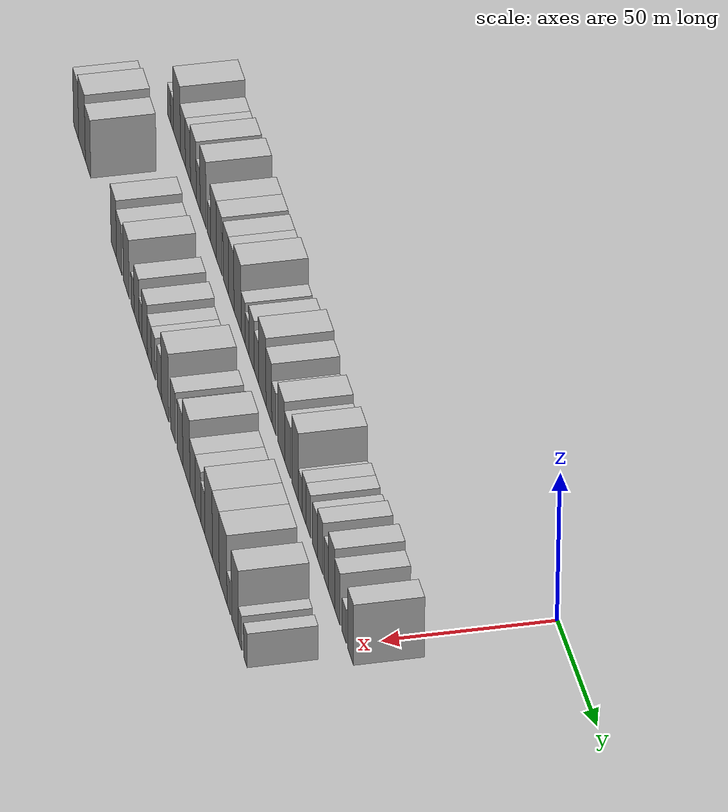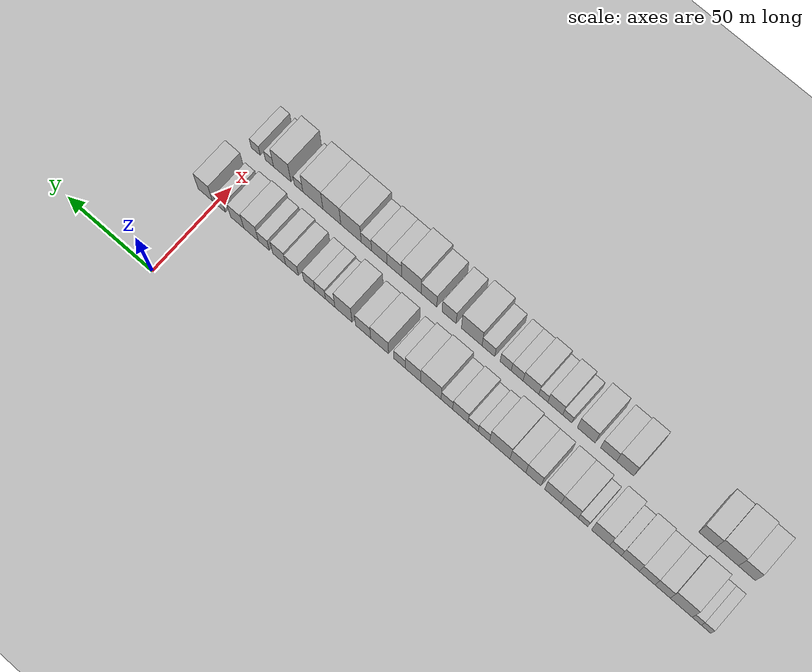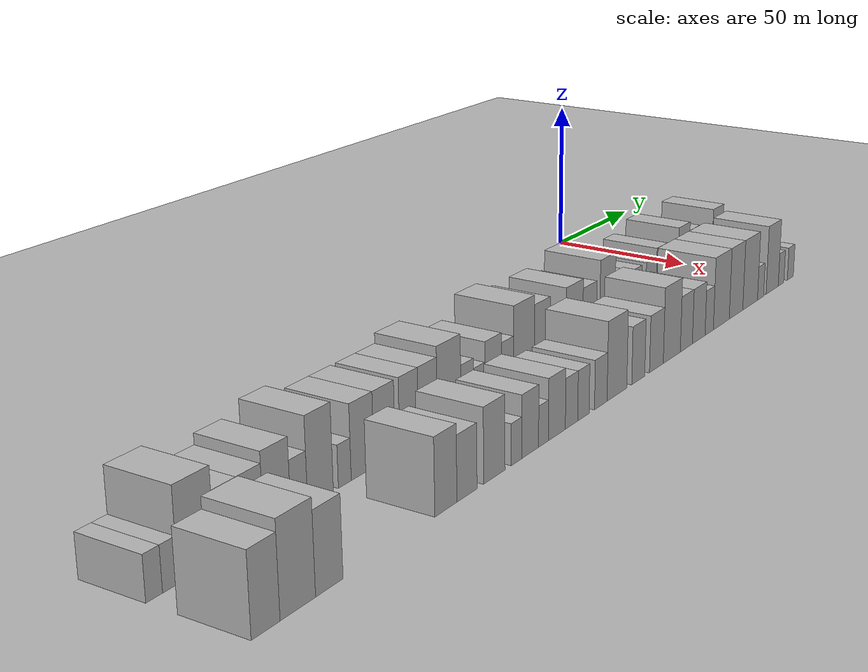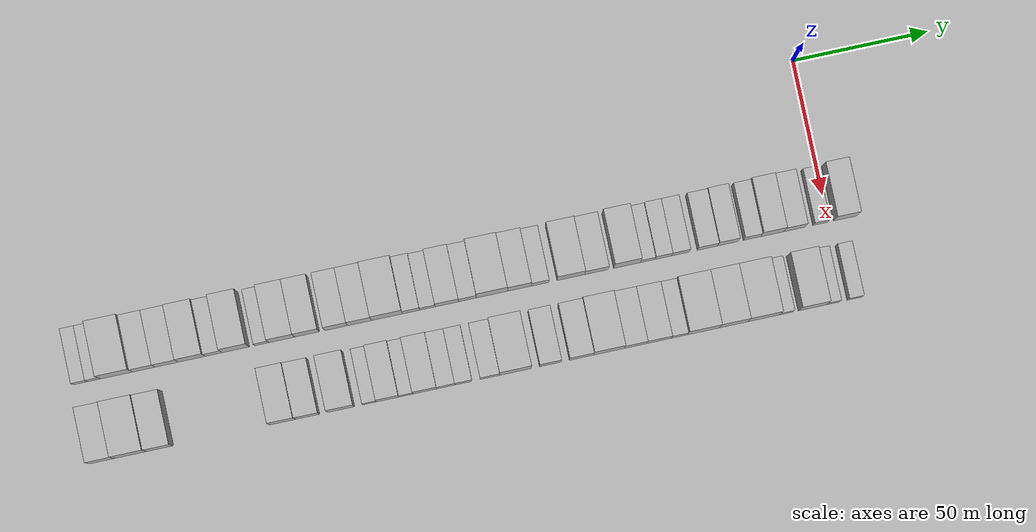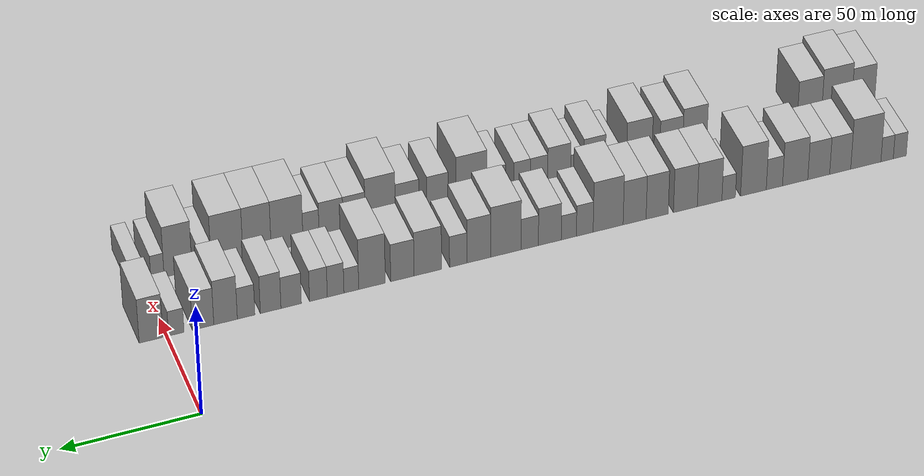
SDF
<sdf version="1.6">
 <world name="default">
  <include><name>ground_plane_1</name><uri>model://HANNAS_ground_plane</uri></include>
  <include>
   <name>ground_plane_2</name>
   <uri>model://HANNAS_ground_plane</uri>
   <pose>100 0 0  0 0 0</pose>
  </include>
  <model name="building_1">
   <static>1</static>
   <pose>50.0000 -275.4501 0 0.000000 0.000000 0.000000</pose>
   <link name="link">
    <pose>0 0 6.00 0 0 0</pose>
    <collision name="collision"><geometry><box><size>20.0000 5.0997 12.0000</size></box></geometry></collision>
    <visual name="visual">
     <cast_shadows>0</cast_shadows>
     <geometry><box><size>20.0000 5.0997 12.0000</size></box></geometry>
     <material>
      <script>
       <uri>model://HANNAS_wall/materials/scripts</uri>
       <uri>model://HANNAS_wall/materials/textures</uri>
       <name>vrc/HANNAS_wall</name>
      </script>
     </material>
    </visual>
   </link>
  </model>
  <model name="building_2">
   <static>1</static>
   <pose>50.0000 -270.4761 0 0.000000 0.000000 0.000000</pose>
   <link name="link">
    <pose>0 0 6.00 0 0 0</pose>
    <collision name="collision"><geometry><box><size>20.0000 4.8484 12.0000</size></box></geometry></collision>
    <visual name="visual">
     <cast_shadows>0</cast_shadows>
     <geometry><box><size>20.0000 4.8484 12.0000</size></box></geometry>
     <material>
      <script>
       <uri>model://HANNAS_wall/materials/scripts</uri>
       <uri>model://HANNAS_wall/materials/textures</uri>
       <name>vrc/HANNAS_wall</name>
      </script>
     </material>
    </visual>
   </link>
  </model>
  <model name="building_3">
   <static>1</static>
   <pose>50.0000 -262.1490 0 0.000000 0.000000 0.000000</pose>
   <link name="link">
    <pose>0 0 12.00 0 0 0</pose>
    <collision name="collision"><geometry><box><size>20.0000 11.8057 24.0000</size></box></geometry></collision>
    <visual name="visual">
     <cast_shadows>0</cast_shadows>
     <geometry><box><size>20.0000 11.8057 24.0000</size></box></geometry>
     <material>
      <script>
       <uri>model://HANNAS_wall/materials/scripts</uri>
       <uri>model://HANNAS_wall/materials/textures</uri>
       <name>vrc/HANNAS_wall</name>
      </script>
     </material>
    </visual>
   </link>
  </model>
  <model name="building_4">
   <static>1</static>
   <pose>50.0000 -252.1356 0 0.000000 0.000000 0.000000</pose>
   <link name="link">
    <pose>0 0 9.00 0 0 0</pose>
    <collision name="collision"><geometry><box><size>20.0000 8.2212 18.0000</size></box></geometry></collision>
    <visual name="visual">
     <cast_shadows>0</cast_shadows>
     <geometry><box><size>20.0000 8.2212 18.0000</size></box></geometry>
     <material>
      <script>
       <uri>model://HANNAS_wall/materials/scripts</uri>
       <uri>model://HANNAS_wall/materials/textures</uri>
       <name>vrc/HANNAS_wall</name>
      </script>
     </material>
    </visual>
   </link>
  </model>
  <model name="building_5">
   <static>1</static>
   <pose>50.0000 -243.7747 0 0.000000 0.000000 0.000000</pose>
   <link name="link">
    <pose>0 0 9.00 0 0 0</pose>
    <collision name="collision"><geometry><box><size>20.0000 8.5006 18.0000</size></box></geometry></collision>
    <visual name="visual">
     <cast_shadows>0</cast_shadows>
     <geometry><box><size>20.0000 8.5006 18.0000</size></box></geometry>
     <material>
      <script>
       <uri>model://HANNAS_wall/materials/scripts</uri>
       <uri>model://HANNAS_wall/materials/textures</uri>
       <name>vrc/HANNAS_wall</name>
      </script>
     </material>
    </visual>
   </link>
  </model>
  <model name="building_6">
   <static>1</static>
   <pose>50.0000 -234.6175 0 0.000000 0.000000 0.000000</pose>
   <link name="link">
    <pose>0 0 10.50 0 0 0</pose>
    <collision name="collision"><geometry><box><size>20.0000 9.8136 21.0000</size></box></geometry></collision>
    <visual name="visual">
     <cast_shadows>0</cast_shadows>
     <geometry><box><size>20.0000 9.8136 21.0000</size></box></geometry>
     <material>
      <script>
       <uri>model://HANNAS_wall/materials/scripts</uri>
       <uri>model://HANNAS_wall/materials/textures</uri>
       <name>vrc/HANNAS_wall</name>
      </script>
     </material>
    </visual>
   </link>
  </model>
  <model name="building_7">
   <static>1</static>
   <pose>50.0000 -226.5610 0 0.000000 0.000000 0.000000</pose>
   <link name="link">
    <pose>0 0 7.50 0 0 0</pose>
    <collision name="collision"><geometry><box><size>20.0000 6.2995 15.0000</size></box></geometry></collision>
    <visual name="visual">
     <cast_shadows>0</cast_shadows>
     <geometry><box><size>20.0000 6.2995 15.0000</size></box></geometry>
     <material>
      <script>
       <uri>model://HANNAS_wall/materials/scripts</uri>
       <uri>model://HANNAS_wall/materials/textures</uri>
       <name>vrc/HANNAS_wall</name>
      </script>
     </material>
    </visual>
   </link>
  </model>
  <model name="building_8">
   <static>1</static>
   <pose>50.0000 -218.4546 0 0.000000 0.000000 0.000000</pose>
   <link name="link">
    <pose>0 0 12.00 0 0 0</pose>
    <collision name="collision"><geometry><box><size>20.0000 9.9131 24.0000</size></box></geometry></collision>
    <visual name="visual">
     <cast_shadows>0</cast_shadows>
     <geometry><box><size>20.0000 9.9131 24.0000</size></box></geometry>
     <material>
      <script>
       <uri>model://HANNAS_wall/materials/scripts</uri>
       <uri>model://HANNAS_wall/materials/textures</uri>
       <name>vrc/HANNAS_wall</name>
      </script>
     </material>
    </visual>
   </link>
  </model>
  <model name="building_9">
   <static>1</static>
   <pose>50.0000 -208.9025 0 0.000000 0.000000 0.000000</pose>
   <link name="link">
    <pose>0 0 6.00 0 0 0</pose>
    <collision name="collision"><geometry><box><size>20.0000 5.1912 12.0000</size></box></geometry></collision>
    <visual name="visual">
     <cast_shadows>0</cast_shadows>
     <geometry><box><size>20.0000 5.1912 12.0000</size></box></geometry>
     <material>
      <script>
       <uri>model://HANNAS_wall/materials/scripts</uri>
       <uri>model://HANNAS_wall/materials/textures</uri>
       <name>vrc/HANNAS_wall</name>
      </script>
     </material>
    </visual>
   </link>
  </model>
  <model name="building_10">
   <static>1</static>
   <pose>50.0000 -201.5796 0 0.000000 0.000000 0.000000</pose>
   <link name="link">
    <pose>0 0 10.50 0 0 0</pose>
    <collision name="collision"><geometry><box><size>20.0000 9.4546 21.0000</size></box></geometry></collision>
    <visual name="visual">
     <cast_shadows>0</cast_shadows>
     <geometry><box><size>20.0000 9.4546 21.0000</size></box></geometry>
     <material>
      <script>
       <uri>model://HANNAS_wall/materials/scripts</uri>
       <uri>model://HANNAS_wall/materials/textures</uri>
       <name>vrc/HANNAS_wall</name>
      </script>
     </material>
    </visual>
   </link>
  </model>
  <model name="building_11">
   <static>1</static>
   <pose>50.0000 -192.2869 0 0.000000 0.000000 0.000000</pose>
   <link name="link">
    <pose>0 0 10.50 0 0 0</pose>
    <collision name="collision"><geometry><box><size>20.0000 9.1308 21.0000</size></box></geometry></collision>
    <visual name="visual">
     <cast_shadows>0</cast_shadows>
     <geometry><box><size>20.0000 9.1308 21.0000</size></box></geometry>
     <material>
      <script>
       <uri>model://HANNAS_wall/materials/scripts</uri>
       <uri>model://HANNAS_wall/materials/textures</uri>
       <name>vrc/HANNAS_wall</name>
      </script>
     </material>
    </visual>
   </link>
  </model>
  <model name="building_12">
   <static>1</static>
   <pose>50.0000 -181.5034 0 0.000000 0.000000 0.000000</pose>
   <link name="link">
    <pose>0 0 10.50 0 0 0</pose>
    <collision name="collision"><geometry><box><size>20.0000 8.4361 21.0000</size></box></geometry></collision>
    <visual name="visual">
     <cast_shadows>0</cast_shadows>
     <geometry><box><size>20.0000 8.4361 21.0000</size></box></geometry>
     <material>
      <script>
       <uri>model://HANNAS_wall/materials/scripts</uri>
       <uri>model://HANNAS_wall/materials/textures</uri>
       <name>vrc/HANNAS_wall</name>
      </script>
     </material>
    </visual>
   </link>
  </model>
  <model name="building_13">
   <static>1</static>
   <pose>50.0000 -172.9142 0 0.000000 0.000000 0.000000</pose>
   <link name="link">
    <pose>0 0 10.50 0 0 0</pose>
    <collision name="collision"><geometry><box><size>20.0000 8.7424 21.0000</size></box></geometry></collision>
    <visual name="visual">
     <cast_shadows>0</cast_shadows>
     <geometry><box><size>20.0000 8.7424 21.0000</size></box></geometry>
     <material>
      <script>
       <uri>model://HANNAS_wall/materials/scripts</uri>
       <uri>model://HANNAS_wall/materials/textures</uri>
       <name>vrc/HANNAS_wall</name>
      </script>
     </material>
    </visual>
   </link>
  </model>
  <model name="building_14">
   <static>1</static>
   <pose>50.0000 -162.8512 0 0.000000 0.000000 0.000000</pose>
   <link name="link">
    <pose>0 0 12.00 0 0 0</pose>
    <collision name="collision"><geometry><box><size>20.0000 11.3835 24.0000</size></box></geometry></collision>
    <visual name="visual">
     <cast_shadows>0</cast_shadows>
     <geometry><box><size>20.0000 11.3835 24.0000</size></box></geometry>
     <material>
      <script>
       <uri>model://HANNAS_wall/materials/scripts</uri>
       <uri>model://HANNAS_wall/materials/textures</uri>
       <name>vrc/HANNAS_wall</name>
      </script>
     </material>
    </visual>
   </link>
  </model>
  <model name="building_15">
   <static>1</static>
   <pose>50.0000 -153.9894 0 0.000000 0.000000 0.000000</pose>
   <link name="link">
    <pose>0 0 7.50 0 0 0</pose>
    <collision name="collision"><geometry><box><size>20.0000 6.3402 15.0000</size></box></geometry></collision>
    <visual name="visual">
     <cast_shadows>0</cast_shadows>
     <geometry><box><size>20.0000 6.3402 15.0000</size></box></geometry>
     <material>
      <script>
       <uri>model://HANNAS_wall/materials/scripts</uri>
       <uri>model://HANNAS_wall/materials/textures</uri>
       <name>vrc/HANNAS_wall</name>
      </script>
     </material>
    </visual>
   </link>
  </model>
  <model name="building_16">
   <static>1</static>
   <pose>50.0000 -147.9651 0 0.000000 0.000000 0.000000</pose>
   <link name="link">
    <pose>0 0 6.00 0 0 0</pose>
    <collision name="collision"><geometry><box><size>20.0000 5.7084 12.0000</size></box></geometry></collision>
    <visual name="visual">
     <cast_shadows>0</cast_shadows>
     <geometry><box><size>20.0000 5.7084 12.0000</size></box></geometry>
     <material>
      <script>
       <uri>model://HANNAS_wall/materials/scripts</uri>
       <uri>model://HANNAS_wall/materials/textures</uri>
       <name>vrc/HANNAS_wall</name>
      </script>
     </material>
    </visual>
   </link>
  </model>
  <model name="building_17">
   <static>1</static>
   <pose>50.0000 -140.8006 0 0.000000 0.000000 0.000000</pose>
   <link name="link">
    <pose>0 0 9.00 0 0 0</pose>
    <collision name="collision"><geometry><box><size>20.0000 8.6206 18.0000</size></box></geometry></collision>
    <visual name="visual">
     <cast_shadows>0</cast_shadows>
     <geometry><box><size>20.0000 8.6206 18.0000</size></box></geometry>
     <material>
      <script>
       <uri>model://HANNAS_wall/materials/scripts</uri>
       <uri>model://HANNAS_wall/materials/textures</uri>
       <name>vrc/HANNAS_wall</name>
      </script>
     </material>
    </visual>
   </link>
  </model>
  <model name="building_18">
   <static>1</static>
   <pose>50.0000 -133.2432 0 0.000000 0.000000 0.000000</pose>
   <link name="link">
    <pose>0 0 7.50 0 0 0</pose>
    <collision name="collision"><geometry><box><size>20.0000 6.4942 15.0000</size></box></geometry></collision>
    <visual name="visual">
     <cast_shadows>0</cast_shadows>
     <geometry><box><size>20.0000 6.4942 15.0000</size></box></geometry>
     <material>
      <script>
       <uri>model://HANNAS_wall/materials/scripts</uri>
       <uri>model://HANNAS_wall/materials/textures</uri>
       <name>vrc/HANNAS_wall</name>
      </script>
     </material>
    </visual>
   </link>
  </model>
  <model name="building_19">
   <static>1</static>
   <pose>50.0000 -124.2672 0 0.000000 0.000000 0.000000</pose>
   <link name="link">
    <pose>0 0 12.00 0 0 0</pose>
    <collision name="collision"><geometry><box><size>20.0000 11.4578 24.0000</size></box></geometry></collision>
    <visual name="visual">
     <cast_shadows>0</cast_shadows>
     <geometry><box><size>20.0000 11.4578 24.0000</size></box></geometry>
     <material>
      <script>
       <uri>model://HANNAS_wall/materials/scripts</uri>
       <uri>model://HANNAS_wall/materials/textures</uri>
       <name>vrc/HANNAS_wall</name>
      </script>
     </material>
    </visual>
   </link>
  </model>
  <model name="building_20">
   <static>1</static>
   <pose>50.0000 -114.1282 0 0.000000 0.000000 0.000000</pose>
   <link name="link">
    <pose>0 0 10.50 0 0 0</pose>
    <collision name="collision"><geometry><box><size>20.0000 8.8202 21.0000</size></box></geometry></collision>
    <visual name="visual">
     <cast_shadows>0</cast_shadows>
     <geometry><box><size>20.0000 8.8202 21.0000</size></box></geometry>
     <material>
      <script>
       <uri>model://HANNAS_wall/materials/scripts</uri>
       <uri>model://HANNAS_wall/materials/textures</uri>
       <name>vrc/HANNAS_wall</name>
      </script>
     </material>
    </visual>
   </link>
  </model>
  <model name="building_21">
   <static>1</static>
   <pose>50.0000 -106.4901 0 0.000000 0.000000 0.000000</pose>
   <link name="link">
    <pose>0 0 7.50 0 0 0</pose>
    <collision name="collision"><geometry><box><size>20.0000 6.4560 15.0000</size></box></geometry></collision>
    <visual name="visual">
     <cast_shadows>0</cast_shadows>
     <geometry><box><size>20.0000 6.4560 15.0000</size></box></geometry>
     <material>
      <script>
       <uri>model://HANNAS_wall/materials/scripts</uri>
       <uri>model://HANNAS_wall/materials/textures</uri>
       <name>vrc/HANNAS_wall</name>
      </script>
     </material>
    </visual>
   </link>
  </model>
  <model name="building_22">
   <static>1</static>
   <pose>50.0000 -95.1648 0 0.000000 0.000000 0.000000</pose>
   <link name="link">
    <pose>0 0 10.50 0 0 0</pose>
    <collision name="collision"><geometry><box><size>20.0000 10.1945 21.0000</size></box></geometry></collision>
    <visual name="visual">
     <cast_shadows>0</cast_shadows>
     <geometry><box><size>20.0000 10.1945 21.0000</size></box></geometry>
     <material>
      <script>
       <uri>model://HANNAS_wall/materials/scripts</uri>
       <uri>model://HANNAS_wall/materials/textures</uri>
       <name>vrc/HANNAS_wall</name>
      </script>
     </material>
    </visual>
   </link>
  </model>
  <model name="building_23">
   <static>1</static>
   <pose>50.0000 -85.7402 0 0.000000 0.000000 0.000000</pose>
   <link name="link">
    <pose>0 0 9.00 0 0 0</pose>
    <collision name="collision"><geometry><box><size>20.0000 8.6548 18.0000</size></box></geometry></collision>
    <visual name="visual">
     <cast_shadows>0</cast_shadows>
     <geometry><box><size>20.0000 8.6548 18.0000</size></box></geometry>
     <material>
      <script>
       <uri>model://HANNAS_wall/materials/scripts</uri>
       <uri>model://HANNAS_wall/materials/textures</uri>
       <name>vrc/HANNAS_wall</name>
      </script>
     </material>
    </visual>
   </link>
  </model>
  <model name="building_24">
   <static>1</static>
   <pose>50.0000 -74.5059 0 0.000000 0.000000 0.000000</pose>
   <link name="link">
    <pose>0 0 12.00 0 0 0</pose>
    <collision name="collision"><geometry><box><size>20.0000 9.8138 24.0000</size></box></geometry></collision>
    <visual name="visual">
     <cast_shadows>0</cast_shadows>
     <geometry><box><size>20.0000 9.8138 24.0000</size></box></geometry>
     <material>
      <script>
       <uri>model://HANNAS_wall/materials/scripts</uri>
       <uri>model://HANNAS_wall/materials/textures</uri>
       <name>vrc/HANNAS_wall</name>
      </script>
     </material>
    </visual>
   </link>
  </model>
  <model name="building_25">
   <static>1</static>
   <pose>50.0000 -66.8826 0 0.000000 0.000000 0.000000</pose>
   <link name="link">
    <pose>0 0 6.00 0 0 0</pose>
    <collision name="collision"><geometry><box><size>20.0000 5.4328 12.0000</size></box></geometry></collision>
    <visual name="visual">
     <cast_shadows>0</cast_shadows>
     <geometry><box><size>20.0000 5.4328 12.0000</size></box></geometry>
     <material>
      <script>
       <uri>model://HANNAS_wall/materials/scripts</uri>
       <uri>model://HANNAS_wall/materials/textures</uri>
       <name>vrc/HANNAS_wall</name>
      </script>
     </material>
    </visual>
   </link>
  </model>
  <model name="building_26">
   <static>1</static>
   <pose>50.0000 -61.1020 0 0.000000 0.000000 0.000000</pose>
   <link name="link">
    <pose>0 0 7.50 0 0 0</pose>
    <collision name="collision"><geometry><box><size>20.0000 6.1285 15.0000</size></box></geometry></collision>
    <visual name="visual">
     <cast_shadows>0</cast_shadows>
     <geometry><box><size>20.0000 6.1285 15.0000</size></box></geometry>
     <material>
      <script>
       <uri>model://HANNAS_wall/materials/scripts</uri>
       <uri>model://HANNAS_wall/materials/textures</uri>
       <name>vrc/HANNAS_wall</name>
      </script>
     </material>
    </visual>
   </link>
  </model>
  <model name="building_27">
   <static>1</static>
   <pose>50.0000 -54.7877 0 0.000000 0.000000 0.000000</pose>
   <link name="link">
    <pose>0 0 7.50 0 0 0</pose>
    <collision name="collision"><geometry><box><size>20.0000 6.5000 15.0000</size></box></geometry></collision>
    <visual name="visual">
     <cast_shadows>0</cast_shadows>
     <geometry><box><size>20.0000 6.5000 15.0000</size></box></geometry>
     <material>
      <script>
       <uri>model://HANNAS_wall/materials/scripts</uri>
       <uri>model://HANNAS_wall/materials/textures</uri>
       <name>vrc/HANNAS_wall</name>
      </script>
     </material>
    </visual>
   </link>
  </model>
  <model name="building_28">
   <static>1</static>
   <pose>50.0000 -44.8088 0 0.000000 0.000000 0.000000</pose>
   <link name="link">
    <pose>0 0 7.50 0 0 0</pose>
    <collision name="collision"><geometry><box><size>20.0000 7.4579 15.0000</size></box></geometry></collision>
    <visual name="visual">
     <cast_shadows>0</cast_shadows>
     <geometry><box><size>20.0000 7.4579 15.0000</size></box></geometry>
     <material>
      <script>
       <uri>model://HANNAS_wall/materials/scripts</uri>
       <uri>model://HANNAS_wall/materials/textures</uri>
       <name>vrc/HANNAS_wall</name>
      </script>
     </material>
    </visual>
   </link>
  </model>
  <model name="building_29">
   <static>1</static>
   <pose>50.0000 -37.3295 0 0.000000 0.000000 0.000000</pose>
   <link name="link">
    <pose>0 0 9.00 0 0 0</pose>
    <collision name="collision"><geometry><box><size>20.0000 7.5007 18.0000</size></box></geometry></collision>
    <visual name="visual">
     <cast_shadows>0</cast_shadows>
     <geometry><box><size>20.0000 7.5007 18.0000</size></box></geometry>
     <material>
      <script>
       <uri>model://HANNAS_wall/materials/scripts</uri>
       <uri>model://HANNAS_wall/materials/textures</uri>
       <name>vrc/HANNAS_wall</name>
      </script>
     </material>
    </visual>
   </link>
  </model>
  <model name="building_30">
   <static>1</static>
   <pose>50.0000 -28.3848 0 0.000000 0.000000 0.000000</pose>
   <link name="link">
    <pose>0 0 7.50 0 0 0</pose>
    <collision name="collision"><geometry><box><size>20.0000 6.3886 15.0000</size></box></geometry></collision>
    <visual name="visual">
     <cast_shadows>0</cast_shadows>
     <geometry><box><size>20.0000 6.3886 15.0000</size></box></geometry>
     <material>
      <script>
       <uri>model://HANNAS_wall/materials/scripts</uri>
       <uri>model://HANNAS_wall/materials/textures</uri>
       <name>vrc/HANNAS_wall</name>
      </script>
     </material>
    </visual>
   </link>
  </model>
  <model name="building_31">
   <static>1</static>
   <pose>50.0000 -20.9215 0 0.000000 0.000000 0.000000</pose>
   <link name="link">
    <pose>0 0 10.50 0 0 0</pose>
    <collision name="collision"><geometry><box><size>20.0000 8.5380 21.0000</size></box></geometry></collision>
    <visual name="visual">
     <cast_shadows>0</cast_shadows>
     <geometry><box><size>20.0000 8.5380 21.0000</size></box></geometry>
     <material>
      <script>
       <uri>model://HANNAS_wall/materials/scripts</uri>
       <uri>model://HANNAS_wall/materials/textures</uri>
       <name>vrc/HANNAS_wall</name>
      </script>
     </material>
    </visual>
   </link>
  </model>
  <model name="building_32">
   <static>1</static>
   <pose>50.0000 -12.7740 0 0.000000 0.000000 0.000000</pose>
   <link name="link">
    <pose>0 0 9.00 0 0 0</pose>
    <collision name="collision"><geometry><box><size>20.0000 7.7571 18.0000</size></box></geometry></collision>
    <visual name="visual">
     <cast_shadows>0</cast_shadows>
     <geometry><box><size>20.0000 7.7571 18.0000</size></box></geometry>
     <material>
      <script>
       <uri>model://HANNAS_wall/materials/scripts</uri>
       <uri>model://HANNAS_wall/materials/textures</uri>
       <name>vrc/HANNAS_wall</name>
      </script>
     </material>
    </visual>
   </link>
  </model>
  <model name="building_33">
   <static>1</static>
   <pose>50.0000 -3.0939 0 0.000000 0.000000 0.000000</pose>
   <link name="link">
    <pose>0 0 6.00 0 0 0</pose>
    <collision name="collision"><geometry><box><size>20.0000 5.6031 12.0000</size></box></geometry></collision>
    <visual name="visual">
     <cast_shadows>0</cast_shadows>
     <geometry><box><size>20.0000 5.6031 12.0000</size></box></geometry>
     <material>
      <script>
       <uri>model://HANNAS_wall/materials/scripts</uri>
       <uri>model://HANNAS_wall/materials/textures</uri>
       <name>vrc/HANNAS_wall</name>
      </script>
     </material>
    </visual>
   </link>
  </model>
  <model name="building_34">
   <static>1</static>
   <pose>50.0000 5.9939 0 0.000000 0.000000 0.000000</pose>
   <link name="link">
    <pose>0 0 10.50 0 0 0</pose>
    <collision name="collision"><geometry><box><size>20.0000 8.5725 21.0000</size></box></geometry></collision>
    <visual name="visual">
     <cast_shadows>0</cast_shadows>
     <geometry><box><size>20.0000 8.5725 21.0000</size></box></geometry>
     <material>
      <script>
       <uri>model://HANNAS_wall/materials/scripts</uri>
       <uri>model://HANNAS_wall/materials/textures</uri>
       <name>vrc/HANNAS_wall</name>
      </script>
     </material>
    </visual>
   </link>
  </model>
  <model name="building_65">
   <static>1</static>
   <pose>79.0000 -273.4248 0 0.000000 0.000000 0.000000</pose>
   <link name="link">
    <pose>0 0 10.50 0 0 0</pose>
    <collision name="collision"><geometry><box><size>20.0000 9.1504 21.0000</size></box></geometry></collision>
    <visual name="visual">
     <cast_shadows>0</cast_shadows>
     <geometry><box><size>20.0000 9.1504 21.0000</size></box></geometry>
     <material>
      <script>
       <uri>model://HANNAS_wall/materials/scripts</uri>
       <uri>model://HANNAS_wall/materials/textures</uri>
       <name>vrc/HANNAS_wall</name>
      </script>
     </material>
    </visual>
   </link>
  </model>
  <model name="building_66">
   <static>1</static>
   <pose>79.0000 -262.9587 0 0.000000 0.000000 0.000000</pose>
   <link name="link">
    <pose>0 0 12.00 0 0 0</pose>
    <collision name="collision"><geometry><box><size>20.0000 11.7820 24.0000</size></box></geometry></collision>
    <visual name="visual">
     <cast_shadows>0</cast_shadows>
     <geometry><box><size>20.0000 11.7820 24.0000</size></box></geometry>
     <material>
      <script>
       <uri>model://HANNAS_wall/materials/scripts</uri>
       <uri>model://HANNAS_wall/materials/textures</uri>
       <name>vrc/HANNAS_wall</name>
      </script>
     </material>
    </visual>
   </link>
  </model>
  <model name="building_67">
   <static>1</static>
   <pose>79.0000 -252.2807 0 0.000000 0.000000 0.000000</pose>
   <link name="link">
    <pose>0 0 10.50 0 0 0</pose>
    <collision name="collision"><geometry><box><size>20.0000 9.5739 21.0000</size></box></geometry></collision>
    <visual name="visual">
     <cast_shadows>0</cast_shadows>
     <geometry><box><size>20.0000 9.5739 21.0000</size></box></geometry>
     <material>
      <script>
       <uri>model://HANNAS_wall/materials/scripts</uri>
       <uri>model://HANNAS_wall/materials/textures</uri>
       <name>vrc/HANNAS_wall</name>
      </script>
     </material>
    </visual>
   </link>
  </model>
  <model name="building_68">
   <static>1</static>
   <pose>79.0000 -207.3890 0 0.000000 0.000000 0.000000</pose>
   <link name="link">
    <pose>0 0 10.50 0 0 0</pose>
    <collision name="collision"><geometry><box><size>20.0000 9.4032 21.0000</size></box></geometry></collision>
    <visual name="visual">
     <cast_shadows>0</cast_shadows>
     <geometry><box><size>20.0000 9.4032 21.0000</size></box></geometry>
     <material>
      <script>
       <uri>model://HANNAS_wall/materials/scripts</uri>
       <uri>model://HANNAS_wall/materials/textures</uri>
       <name>vrc/HANNAS_wall</name>
      </script>
     </material>
    </visual>
   </link>
  </model>
  <model name="building_69">
   <static>1</static>
   <pose>79.0000 -198.2684 0 0.000000 0.000000 0.000000</pose>
   <link name="link">
    <pose>0 0 9.00 0 0 0</pose>
    <collision name="collision"><geometry><box><size>20.0000 8.8380 18.0000</size></box></geometry></collision>
    <visual name="visual">
     <cast_shadows>0</cast_shadows>
     <geometry><box><size>20.0000 8.8380 18.0000</size></box></geometry>
     <material>
      <script>
       <uri>model://HANNAS_wall/materials/scripts</uri>
       <uri>model://HANNAS_wall/materials/textures</uri>
       <name>vrc/HANNAS_wall</name>
      </script>
     </material>
    </visual>
   </link>
  </model>
  <model name="building_70">
   <static>1</static>
   <pose>79.0000 -185.9154 0 0.000000 0.000000 0.000000</pose>
   <link name="link">
    <pose>0 0 10.50 0 0 0</pose>
    <collision name="collision"><geometry><box><size>20.0000 9.8680 21.0000</size></box></geometry></collision>
    <visual name="visual">
     <cast_shadows>0</cast_shadows>
     <geometry><box><size>20.0000 9.8680 21.0000</size></box></geometry>
     <material>
      <script>
       <uri>model://HANNAS_wall/materials/scripts</uri>
       <uri>model://HANNAS_wall/materials/textures</uri>
       <name>vrc/HANNAS_wall</name>
      </script>
     </material>
    </visual>
   </link>
  </model>
  <model name="building_71">
   <static>1</static>
   <pose>79.0000 -175.4181 0 0.000000 0.000000 0.000000</pose>
   <link name="link">
    <pose>0 0 6.00 0 0 0</pose>
    <collision name="collision"><geometry><box><size>20.0000 5.1268 12.0000</size></box></geometry></collision>
    <visual name="visual">
     <cast_shadows>0</cast_shadows>
     <geometry><box><size>20.0000 5.1268 12.0000</size></box></geometry>
     <material>
      <script>
       <uri>model://HANNAS_wall/materials/scripts</uri>
       <uri>model://HANNAS_wall/materials/textures</uri>
       <name>vrc/HANNAS_wall</name>
      </script>
     </material>
    </visual>
   </link>
  </model>
  <model name="building_72">
   <static>1</static>
   <pose>79.0000 -168.7110 0 0.000000 0.000000 0.000000</pose>
   <link name="link">
    <pose>0 0 9.00 0 0 0</pose>
    <collision name="collision"><geometry><box><size>20.0000 8.2872 18.0000</size></box></geometry></collision>
    <visual name="visual">
     <cast_shadows>0</cast_shadows>
     <geometry><box><size>20.0000 8.2872 18.0000</size></box></geometry>
     <material>
      <script>
       <uri>model://HANNAS_wall/materials/scripts</uri>
       <uri>model://HANNAS_wall/materials/textures</uri>
       <name>vrc/HANNAS_wall</name>
      </script>
     </material>
    </visual>
   </link>
  </model>
  <model name="building_73">
   <static>1</static>
   <pose>79.0000 -162.0467 0 0.000000 0.000000 0.000000</pose>
   <link name="link">
    <pose>0 0 6.00 0 0 0</pose>
    <collision name="collision"><geometry><box><size>20.0000 5.0414 12.0000</size></box></geometry></collision>
    <visual name="visual">
     <cast_shadows>0</cast_shadows>
     <geometry><box><size>20.0000 5.0414 12.0000</size></box></geometry>
     <material>
      <script>
       <uri>model://HANNAS_wall/materials/scripts</uri>
       <uri>model://HANNAS_wall/materials/textures</uri>
       <name>vrc/HANNAS_wall</name>
      </script>
     </material>
    </visual>
   </link>
  </model>
  <model name="building_74">
   <static>1</static>
   <pose>79.0000 -155.1296 0 0.000000 0.000000 0.000000</pose>
   <link name="link">
    <pose>0 0 9.00 0 0 0</pose>
    <collision name="collision"><geometry><box><size>20.0000 8.7928 18.0000</size></box></geometry></collision>
    <visual name="visual">
     <cast_shadows>0</cast_shadows>
     <geometry><box><size>20.0000 8.7928 18.0000</size></box></geometry>
     <material>
      <script>
       <uri>model://HANNAS_wall/materials/scripts</uri>
       <uri>model://HANNAS_wall/materials/textures</uri>
       <name>vrc/HANNAS_wall</name>
      </script>
     </material>
    </visual>
   </link>
  </model>
  <model name="building_75">
   <static>1</static>
   <pose>79.0000 -147.4023 0 0.000000 0.000000 0.000000</pose>
   <link name="link">
    <pose>0 0 7.50 0 0 0</pose>
    <collision name="collision"><geometry><box><size>20.0000 6.6617 15.0000</size></box></geometry></collision>
    <visual name="visual">
     <cast_shadows>0</cast_shadows>
     <geometry><box><size>20.0000 6.6617 15.0000</size></box></geometry>
     <material>
      <script>
       <uri>model://HANNAS_wall/materials/scripts</uri>
       <uri>model://HANNAS_wall/materials/textures</uri>
       <name>vrc/HANNAS_wall</name>
      </script>
     </material>
    </visual>
   </link>
  </model>
  <model name="building_76">
   <static>1</static>
   <pose>79.0000 -140.9356 0 0.000000 0.000000 0.000000</pose>
   <link name="link">
    <pose>0 0 7.50 0 0 0</pose>
    <collision name="collision"><geometry><box><size>20.0000 6.2718 15.0000</size></box></geometry></collision>
    <visual name="visual">
     <cast_shadows>0</cast_shadows>
     <geometry><box><size>20.0000 6.2718 15.0000</size></box></geometry>
     <material>
      <script>
       <uri>model://HANNAS_wall/materials/scripts</uri>
       <uri>model://HANNAS_wall/materials/textures</uri>
       <name>vrc/HANNAS_wall</name>
      </script>
     </material>
    </visual>
   </link>
  </model>
  <model name="building_77">
   <static>1</static>
   <pose>79.0000 -131.2166 0 0.000000 0.000000 0.000000</pose>
   <link name="link">
    <pose>0 0 7.50 0 0 0</pose>
    <collision name="collision"><geometry><box><size>20.0000 7.1662 15.0000</size></box></geometry></collision>
    <visual name="visual">
     <cast_shadows>0</cast_shadows>
     <geometry><box><size>20.0000 7.1662 15.0000</size></box></geometry>
     <material>
      <script>
       <uri>model://HANNAS_wall/materials/scripts</uri>
       <uri>model://HANNAS_wall/materials/textures</uri>
       <name>vrc/HANNAS_wall</name>
      </script>
     </material>
    </visual>
   </link>
  </model>
  <model name="building_78">
   <static>1</static>
   <pose>79.0000 -121.8161 0 0.000000 0.000000 0.000000</pose>
   <link name="link">
    <pose>0 0 12.00 0 0 0</pose>
    <collision name="collision"><geometry><box><size>20.0000 11.6349 24.0000</size></box></geometry></collision>
    <visual name="visual">
     <cast_shadows>0</cast_shadows>
     <geometry><box><size>20.0000 11.6349 24.0000</size></box></geometry>
     <material>
      <script>
       <uri>model://HANNAS_wall/materials/scripts</uri>
       <uri>model://HANNAS_wall/materials/textures</uri>
       <name>vrc/HANNAS_wall</name>
      </script>
     </material>
    </visual>
   </link>
  </model>
  <model name="building_79">
   <static>1</static>
   <pose>79.0000 -108.9992 0 0.000000 0.000000 0.000000</pose>
   <link name="link">
    <pose>0 0 9.00 0 0 0</pose>
    <collision name="collision"><geometry><box><size>20.0000 7.9988 18.0000</size></box></geometry></collision>
    <visual name="visual">
     <cast_shadows>0</cast_shadows>
     <geometry><box><size>20.0000 7.9988 18.0000</size></box></geometry>
     <material>
      <script>
       <uri>model://HANNAS_wall/materials/scripts</uri>
       <uri>model://HANNAS_wall/materials/textures</uri>
       <name>vrc/HANNAS_wall</name>
      </script>
     </material>
    </visual>
   </link>
  </model>
  <model name="building_80">
   <static>1</static>
   <pose>79.0000 -97.5665 0 0.000000 0.000000 0.000000</pose>
   <link name="link">
    <pose>0 0 9.00 0 0 0</pose>
    <collision name="collision"><geometry><box><size>20.0000 8.8666 18.0000</size></box></geometry></collision>
    <visual name="visual">
     <cast_shadows>0</cast_shadows>
     <geometry><box><size>20.0000 8.8666 18.0000</size></box></geometry>
     <material>
      <script>
       <uri>model://HANNAS_wall/materials/scripts</uri>
       <uri>model://HANNAS_wall/materials/textures</uri>
       <name>vrc/HANNAS_wall</name>
      </script>
     </material>
    </visual>
   </link>
  </model>
  <model name="building_81">
   <static>1</static>
   <pose>79.0000 -87.4960 0 0.000000 0.000000 0.000000</pose>
   <link name="link">
    <pose>0 0 12.00 0 0 0</pose>
    <collision name="collision"><geometry><box><size>20.0000 11.2745 24.0000</size></box></geometry></collision>
    <visual name="visual">
     <cast_shadows>0</cast_shadows>
     <geometry><box><size>20.0000 11.2745 24.0000</size></box></geometry>
     <material>
      <script>
       <uri>model://HANNAS_wall/materials/scripts</uri>
       <uri>model://HANNAS_wall/materials/textures</uri>
       <name>vrc/HANNAS_wall</name>
      </script>
     </material>
    </visual>
   </link>
  </model>
  <model name="building_82">
   <static>1</static>
   <pose>79.0000 -77.7199 0 0.000000 0.000000 0.000000</pose>
   <link name="link">
    <pose>0 0 9.00 0 0 0</pose>
    <collision name="collision"><geometry><box><size>20.0000 8.2777 18.0000</size></box></geometry></collision>
    <visual name="visual">
     <cast_shadows>0</cast_shadows>
     <geometry><box><size>20.0000 8.2777 18.0000</size></box></geometry>
     <material>
      <script>
       <uri>model://HANNAS_wall/materials/scripts</uri>
       <uri>model://HANNAS_wall/materials/textures</uri>
       <name>vrc/HANNAS_wall</name>
      </script>
     </material>
    </visual>
   </link>
  </model>
  <model name="building_83">
   <static>1</static>
   <pose>79.0000 -69.1218 0 0.000000 0.000000 0.000000</pose>
   <link name="link">
    <pose>0 0 9.00 0 0 0</pose>
    <collision name="collision"><geometry><box><size>20.0000 8.9186 18.0000</size></box></geometry></collision>
    <visual name="visual">
     <cast_shadows>0</cast_shadows>
     <geometry><box><size>20.0000 8.9186 18.0000</size></box></geometry>
     <material>
      <script>
       <uri>model://HANNAS_wall/materials/scripts</uri>
       <uri>model://HANNAS_wall/materials/textures</uri>
       <name>vrc/HANNAS_wall</name>
      </script>
     </material>
    </visual>
   </link>
  </model>
  <model name="building_84">
   <static>1</static>
   <pose>79.0000 -61.6561 0 0.000000 0.000000 0.000000</pose>
   <link name="link">
    <pose>0 0 7.50 0 0 0</pose>
    <collision name="collision"><geometry><box><size>20.0000 6.0129 15.0000</size></box></geometry></collision>
    <visual name="visual">
     <cast_shadows>0</cast_shadows>
     <geometry><box><size>20.0000 6.0129 15.0000</size></box></geometry>
     <material>
      <script>
       <uri>model://HANNAS_wall/materials/scripts</uri>
       <uri>model://HANNAS_wall/materials/textures</uri>
       <name>vrc/HANNAS_wall</name>
      </script>
     </material>
    </visual>
   </link>
  </model>
  <model name="building_85">
   <static>1</static>
   <pose>79.0000 -52.7440 0 0.000000 0.000000 0.000000</pose>
   <link name="link">
    <pose>0 0 12.00 0 0 0</pose>
    <collision name="collision"><geometry><box><size>20.0000 11.8112 24.0000</size></box></geometry></collision>
    <visual name="visual">
     <cast_shadows>0</cast_shadows>
     <geometry><box><size>20.0000 11.8112 24.0000</size></box></geometry>
     <material>
      <script>
       <uri>model://HANNAS_wall/materials/scripts</uri>
       <uri>model://HANNAS_wall/materials/textures</uri>
       <name>vrc/HANNAS_wall</name>
      </script>
     </material>
    </visual>
   </link>
  </model>
  <model name="building_86">
   <static>1</static>
   <pose>79.0000 -41.6299 0 0.000000 0.000000 0.000000</pose>
   <link name="link">
    <pose>0 0 12.00 0 0 0</pose>
    <collision name="collision"><geometry><box><size>20.0000 10.4170 24.0000</size></box></geometry></collision>
    <visual name="visual">
     <cast_shadows>0</cast_shadows>
     <geometry><box><size>20.0000 10.4170 24.0000</size></box></geometry>
     <material>
      <script>
       <uri>model://HANNAS_wall/materials/scripts</uri>
       <uri>model://HANNAS_wall/materials/textures</uri>
       <name>vrc/HANNAS_wall</name>
      </script>
     </material>
    </visual>
   </link>
  </model>
  <model name="building_87">
   <static>1</static>
   <pose>79.0000 -30.5633 0 0.000000 0.000000 0.000000</pose>
   <link name="link">
    <pose>0 0 12.00 0 0 0</pose>
    <collision name="collision"><geometry><box><size>20.0000 11.7161 24.0000</size></box></geometry></collision>
    <visual name="visual">
     <cast_shadows>0</cast_shadows>
     <geometry><box><size>20.0000 11.7161 24.0000</size></box></geometry>
     <material>
      <script>
       <uri>model://HANNAS_wall/materials/scripts</uri>
       <uri>model://HANNAS_wall/materials/textures</uri>
       <name>vrc/HANNAS_wall</name>
      </script>
     </material>
    </visual>
   </link>
  </model>
  <model name="building_88">
   <static>1</static>
   <pose>79.0000 -22.2012 0 0.000000 0.000000 0.000000</pose>
   <link name="link">
    <pose>0 0 6.00 0 0 0</pose>
    <collision name="collision"><geometry><box><size>20.0000 5.0082 12.0000</size></box></geometry></collision>
    <visual name="visual">
     <cast_shadows>0</cast_shadows>
     <geometry><box><size>20.0000 5.0082 12.0000</size></box></geometry>
     <material>
      <script>
       <uri>model://HANNAS_wall/materials/scripts</uri>
       <uri>model://HANNAS_wall/materials/textures</uri>
       <name>vrc/HANNAS_wall</name>
      </script>
     </material>
    </visual>
   </link>
  </model>
  <model name="building_89">
   <static>1</static>
   <pose>79.0000 -12.5825 0 0.000000 0.000000 0.000000</pose>
   <link name="link">
    <pose>0 0 12.00 0 0 0</pose>
    <collision name="collision"><geometry><box><size>20.0000 10.2291 24.0000</size></box></geometry></collision>
    <visual name="visual">
     <cast_shadows>0</cast_shadows>
     <geometry><box><size>20.0000 10.2291 24.0000</size></box></geometry>
     <material>
      <script>
       <uri>model://HANNAS_wall/materials/scripts</uri>
       <uri>model://HANNAS_wall/materials/textures</uri>
       <name>vrc/HANNAS_wall</name>
      </script>
     </material>
    </visual>
   </link>
  </model>
  <model name="building_90">
   <static>1</static>
   <pose>79.0000 -5.0557 0 0.000000 0.000000 0.000000</pose>
   <link name="link">
    <pose>0 0 6.00 0 0 0</pose>
    <collision name="collision"><geometry><box><size>20.0000 4.8245 12.0000</size></box></geometry></collision>
    <visual name="visual">
     <cast_shadows>0</cast_shadows>
     <geometry><box><size>20.0000 4.8245 12.0000</size></box></geometry>
     <material>
      <script>
       <uri>model://HANNAS_wall/materials/scripts</uri>
       <uri>model://HANNAS_wall/materials/textures</uri>
       <name>vrc/HANNAS_wall</name>
      </script>
     </material>
    </visual>
   </link>
  </model>
  <model name="building_91">
   <static>1</static>
   <pose>79.0000 3.0224 0 0.000000 0.000000 0.000000</pose>
   <link name="link">
    <pose>0 0 6.00 0 0 0</pose>
    <collision name="collision"><geometry><box><size>20.0000 5.3316 12.0000</size></box></geometry></collision>
    <visual name="visual">
     <cast_shadows>0</cast_shadows>
     <geometry><box><size>20.0000 5.3316 12.0000</size></box></geometry>
     <material>
      <script>
       <uri>model://HANNAS_wall/materials/scripts</uri>
       <uri>model://HANNAS_wall/materials/textures</uri>
       <name>vrc/HANNAS_wall</name>
      </script>
     </material>
    </visual>
   </link>
  </model>
 </world>
</sdf>
